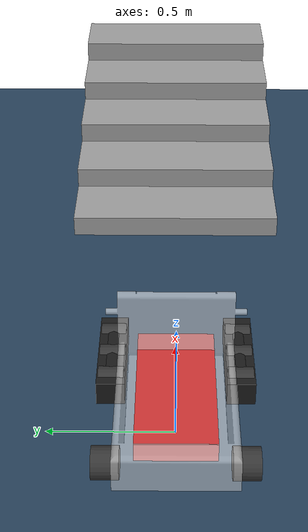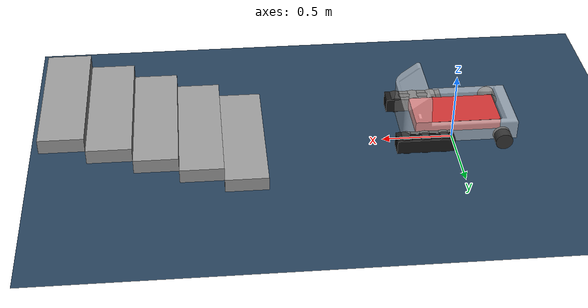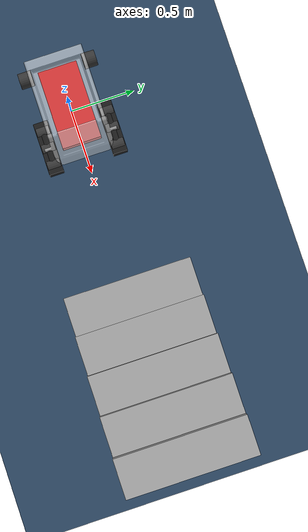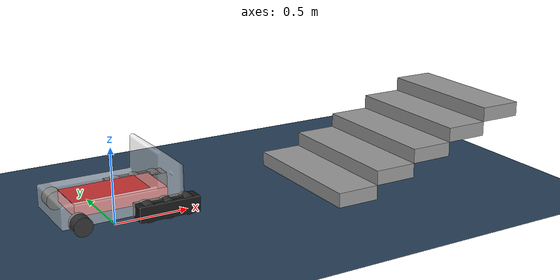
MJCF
<mujoco model="RAY_Unified_HalfTrack_Fixed">
  <compiler autolimits="true"/>

  <asset>
    <texture name="grid" type="2d" builtin="checker" width="512" height="512" rgb1=".1 .2 .3" rgb2=".2 .3 .4"/>
    <material name="grid" texture="grid" texrepeat="1 1" texuniform="true" reflectance=".2"/>
    <mesh name="chassis" file="assets/chassis.stl" scale="0.001 0.001 0.001"/>
  </asset>

  <default>
    <joint damping="0.5"/>
    <default class="standard_wheel">
      <geom type="cylinder" size=".06 .05" rgba="0.2 0.2 0.2 1" euler="90 0 0" condim="3" friction="2.5 0.005 0.0001"/>
      <joint type="hinge" axis="0 1 0"/>
    </default>
    <default class="track_belt">
        <geom type="capsule" size=".055" rgba="0.1 0.1 0.1 1" condim="3" friction="1.5 0.005 0.0001"/>
    </default>
  </default>

  <worldbody>
    <geom type="plane" size="3 3 .01" material="grid"/>
    <light name="top light" pos="0 0 2" mode="trackcom" diffuse=".4 .4 .4"/>

    <body name="car" pos="0 0 .15">
      <freejoint/>
      <inertial pos="0.1 0 0" mass="10" diaginertia="0.5 0.5 0.8"/>

      <geom name="chassis_visual" type="mesh" mesh="chassis" pos="-0.405 0.275 -0.05" euler="90 0 0"
            density="0" contype="0" conaffinity="0" group="1" rgba="1 1 1 0.5"/>

      <geom name="belly" type="box" size=".3 .15 .04" pos="0 0 0.05" rgba=".8 .2 .2 1"/>

      <body name="left_track_module" pos="0.25 .25 0">
        <joint name="climb_L" axis="0 1 0" damping="5.0"/>

        <geom type="box" size=".20 .055 .05" rgba="0.1 0.1 0.1 1" mass="1" contype="0" conaffinity="0"/>

        <geom class="track_belt" fromto=".13 0 0 0 0 0"/>
        <geom class="track_belt" fromto="0 0 0 -.13 0 0"/>

        <body name="LT_1" pos=".13 0 0">
             <joint name="L_T1" class="standard_wheel"/> <geom class="standard_wheel"/>
        </body>
        <body name="LT_2" pos="0 0 0">
             <joint name="L_T2" class="standard_wheel"/> <geom class="standard_wheel"/>
        </body>
        <body name="LT_3" pos="-.13 0 0">
             <joint name="L_T3" class="standard_wheel"/> <geom class="standard_wheel"/>
        </body>
      </body>

      <body name="left_wheel_rear" pos="-0.3 0.25 0">
        <joint name="L_Rear" class="standard_wheel"/>
        <geom class="standard_wheel"/>
      </body>

      <body name="right_track_module" pos="0.25 -.25 0">
        <joint name="climb_R" axis="0 1 0" damping="5.0"/>

        <geom type="box" size=".20 .055 .05" rgba="0.1 0.1 0.1 1" mass="1" contype="0" conaffinity="0"/>

        <geom class="track_belt" fromto=".13 0 0 0 0 0"/>
        <geom class="track_belt" fromto="0 0 0 -.13 0 0"/>

        <body name="RT_1" pos=".13 0 0">
             <joint name="R_T1" class="standard_wheel"/> <geom class="standard_wheel"/>
        </body>
        <body name="RT_2" pos="0 0 0">
             <joint name="R_T2" class="standard_wheel"/> <geom class="standard_wheel"/>
        </body>
        <body name="RT_3" pos="-.13 0 0">
             <joint name="R_T3" class="standard_wheel"/> <geom class="standard_wheel"/>
        </body>
      </body>

      <body name="right_wheel_rear" pos="-0.3 -.25 0">
        <joint name="R_Rear" class="standard_wheel"/>
        <geom class="standard_wheel"/>
      </body>
    </body>

    <body name="stairs" pos="1.5 0 0">
      <geom type="box" name="step1" size="0.15 0.5 0.05" pos="0 0.00 0.05" rgba="0.6 0.6 0.6 1"/>
      <geom type="box" name="step2" size="0.15 0.5 0.05" pos="0.30 0 0.15" rgba="0.6 0.6 0.6 1"/>
      <geom type="box" name="step3" size="0.15 0.5 0.05" pos="0.60 0 0.25" rgba="0.6 0.6 0.6 1"/>
      <geom type="box" name="step4" size="0.15 0.5 0.05" pos="0.90 0 0.35" rgba="0.6 0.6 0.6 1"/>
      <geom type="box" name="step5" size="0.15 0.5 0.05" pos="1.20 0 0.45" rgba="0.6 0.6 0.6 1"/>
    </body>
  </worldbody>

  <tendon>
    <fixed name="forward_combined">
        <joint joint="L_T1" coef="0.5"/> <joint joint="L_T2" coef="0.5"/> <joint joint="L_T3" coef="0.5"/>
        <joint joint="L_Rear" coef="0.5"/>
        <joint joint="R_T1" coef="0.5"/> <joint joint="R_T2" coef="0.5"/> <joint joint="R_T3" coef="0.5"/>
        <joint joint="R_Rear" coef="0.5"/>
    </fixed>

    <fixed name="turn_combined">
        <joint joint="L_T1" coef="-0.5"/> <joint joint="L_T2" coef="-0.5"/> <joint joint="L_T3" coef="-0.5"/>
        <joint joint="L_Rear" coef="-0.5"/>
        <joint joint="R_T1" coef="0.5"/> <joint joint="R_T2" coef="0.5"/> <joint joint="R_T3" coef="0.5"/>
        <joint joint="R_Rear" coef="0.5"/>
    </fixed>

    <fixed name="climb_sync">
      <joint joint="climb_L" coef="1"/> <joint joint="climb_R" coef="1"/>
    </fixed>
  </tendon>

  <actuator>
    <motor name="drive_forward" tendon="forward_combined" ctrlrange="-1 1" gear="40"/>
    <motor name="drive_turn" tendon="turn_combined" ctrlrange="-1 1" gear="40"/>
    <position name="actuator_climb" tendon="climb_sync" ctrlrange="-1 1" kp="800"/>
  </actuator>
</mujoco>
